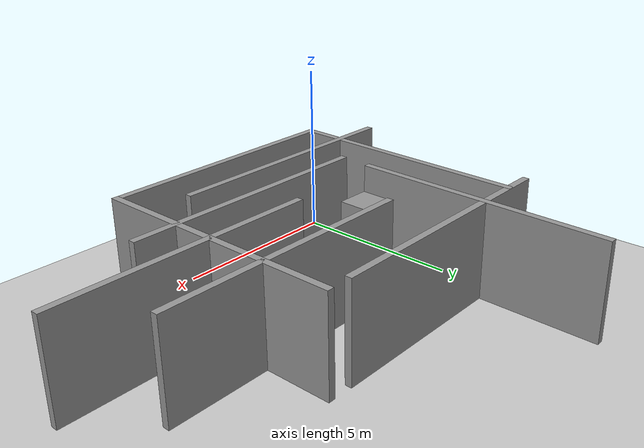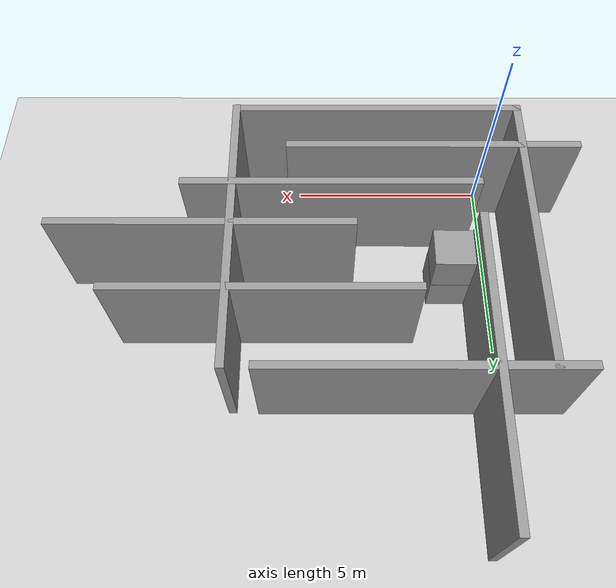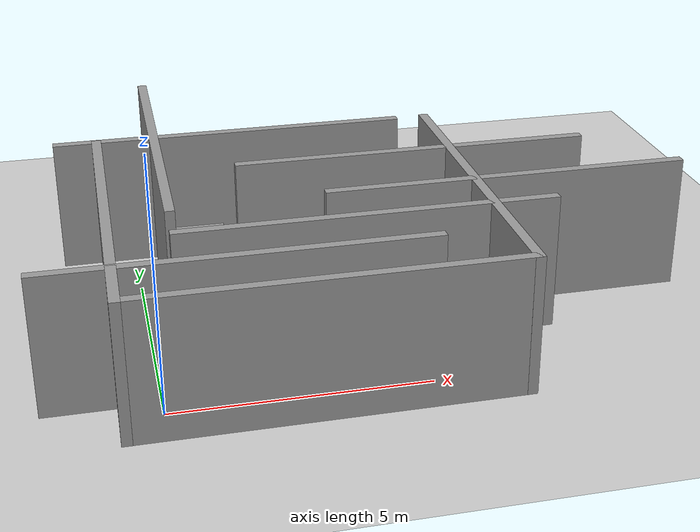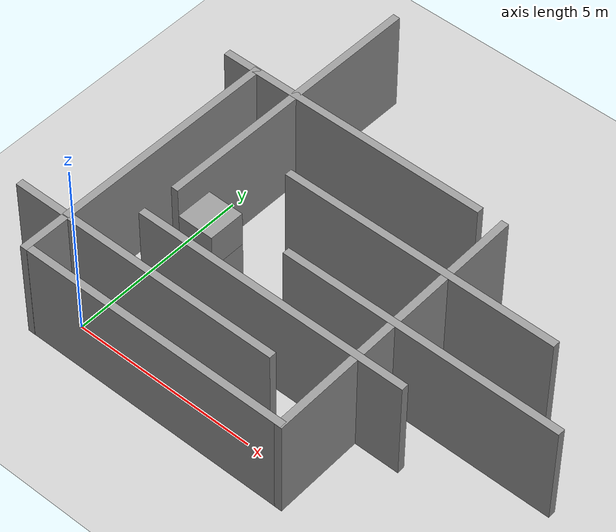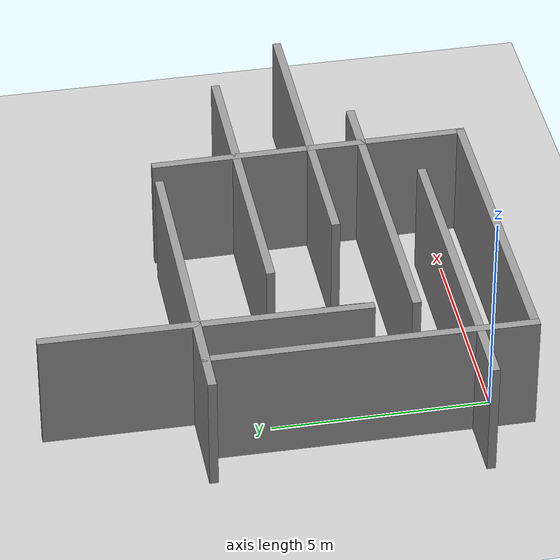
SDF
<sdf version="1.6">
 <world name="default">
  <light name="sun" type="directional">
   <pose>0 0 10 0 -0 0</pose>
   <diffuse>0.8 0.8 0.8 1</diffuse>
   <specular>0.2 0.2 0.2 1</specular>
   <attenuation>
    <range>1000</range>
    <constant>0.9</constant>
    <linear>0.01</linear>
    <quadratic>0.001</quadratic>
   </attenuation>
   <direction>-0.5 0.1 -0.9</direction>
  </light>
  <model name="ground_plane">
   <static>1</static>
   <link name="link">
    <collision name="collision">
     <geometry><plane><normal>0 0 1</normal><size>100 100</size></plane></geometry>
     <surface>
      <contact><collide_bitmask>65535</collide_bitmask></contact>
      <friction><ode><mu>100</mu><mu2>50</mu2></ode></friction>
     </surface>
    </collision>
    <visual name="visual">
     <cast_shadows>0</cast_shadows>
     <geometry><plane><normal>0 0 1</normal><size>100 100</size></plane></geometry>
     <material>
      <script><uri>file://media/materials/scripts/gazebo.material</uri><name>Gazebo/Grey</name></script>
     </material>
    </visual>
   </link>
  </model>
  <gravity>0 0 -9.8</gravity>
  <magnetic_field>6e-06 2.3e-05 -4.2e-05</magnetic_field>
  <atmosphere type="adiabatic"/>
  <physics name="default_physics" default="0" type="ode">
   <max_step_size>0.001</max_step_size>
   <real_time_factor>1</real_time_factor>
   <real_time_update_rate>1000</real_time_update_rate>
  </physics>
  <scene><ambient>0.4 0.4 0.4 1</ambient><background>0.7 0.7 0.7 1</background><shadows>1</shadows></scene>
  <audio><device>default</device></audio>
  <spherical_coordinates>
   <surface_model>EARTH_WGS84</surface_model>
   <latitude_deg>0</latitude_deg>
   <longitude_deg>0</longitude_deg>
   <elevation>0</elevation>
   <heading_deg>0</heading_deg>
  </spherical_coordinates>
  <model name="grey_wall">
   <static>1</static>
   <link name="link">
    <pose>0 0 1.4 0 -0 0</pose>
    <collision name="collision"><geometry><box><size>7.5 0.2 2.8</size></box></geometry></collision>
    <visual name="visual">
     <cast_shadows>0</cast_shadows>
     <geometry><box><size>7.5 0.2 2.8</size></box></geometry>
     <material>
      <script>
       <uri>model://grey_wall/materials/scripts</uri>
       <uri>model://grey_wall/materials/textures</uri>
       <name>vrc/grey_wall</name>
      </script>
     </material>
    </visual>
   </link>
   <pose>2.9398 -0.755993 0 0 -0 0</pose>
  </model>
  <model name="grey_wall_0">
   <static>1</static>
   <link name="link">
    <pose>0 0 1.4 0 -0 0</pose>
    <collision name="collision"><geometry><box><size>7.5 0.2 2.8</size></box></geometry></collision>
    <visual name="visual">
     <cast_shadows>0</cast_shadows>
     <geometry><box><size>7.5 0.2 2.8</size></box></geometry>
     <material>
      <script>
       <uri>model://grey_wall/materials/scripts</uri>
       <uri>model://grey_wall/materials/textures</uri>
       <name>vrc/grey_wall</name>
      </script>
     </material>
    </visual>
   </link>
   <pose>1.55326 0.480249 0 0 -0 0</pose>
  </model>
  <model name="grey_wall_1">
   <static>1</static>
   <link name="link">
    <pose>0 0 1.4 0 -0 0</pose>
    <collision name="collision"><geometry><box><size>7.5 0.2 2.8</size></box></geometry></collision>
    <visual name="visual">
     <cast_shadows>0</cast_shadows>
     <geometry><box><size>7.5 0.2 2.8</size></box></geometry>
     <material>
      <script>
       <uri>model://grey_wall/materials/scripts</uri>
       <uri>model://grey_wall/materials/textures</uri>
       <name>vrc/grey_wall</name>
      </script>
     </material>
    </visual>
   </link>
   <pose>6.59995 2.89282 0 0 -0 1.57896</pose>
  </model>
  <model name="grey_wall_2">
   <static>1</static>
   <link name="link">
    <pose>0 0 1.4 0 -0 0</pose>
    <collision name="collision"><geometry><box><size>7.5 0.2 2.8</size></box></geometry></collision>
    <visual name="visual">
     <cast_shadows>0</cast_shadows>
     <geometry><box><size>7.5 0.2 2.8</size></box></geometry>
     <material>
      <script>
       <uri>model://grey_wall/materials/scripts</uri>
       <uri>model://grey_wall/materials/textures</uri>
       <name>vrc/grey_wall</name>
      </script>
     </material>
    </visual>
   </link>
   <pose>-0.688116 2.8906 0 0 0 -1.58039</pose>
  </model>
  <model name="grey_wall_3">
   <static>1</static>
   <link name="link">
    <pose>0 0 1.4 0 -0 0</pose>
    <collision name="collision"><geometry><box><size>7.5 0.2 2.8</size></box></geometry></collision>
    <visual name="visual">
     <cast_shadows>0</cast_shadows>
     <geometry><box><size>7.5 0.2 2.8</size></box></geometry>
     <material>
      <script>
       <uri>model://grey_wall/materials/scripts</uri>
       <uri>model://grey_wall/materials/textures</uri>
       <name>vrc/grey_wall</name>
      </script>
     </material>
    </visual>
   </link>
   <pose>2.19198 6.56714 0 0 -0 0</pose>
  </model>
  <model name="grey_wall_4">
   <static>1</static>
   <link name="link">
    <pose>0 0 1.4 0 -0 0</pose>
    <collision name="collision"><geometry><box><size>7.5 0.2 2.8</size></box></geometry></collision>
    <visual name="visual">
     <cast_shadows>0</cast_shadows>
     <geometry><box><size>7.5 0.2 2.8</size></box></geometry>
     <material>
      <script>
       <uri>model://grey_wall/materials/scripts</uri>
       <uri>model://grey_wall/materials/textures</uri>
       <name>vrc/grey_wall</name>
      </script>
     </material>
    </visual>
   </link>
   <pose>4.16288 1.65008 0 0 -0 0</pose>
  </model>
  <model name="grey_wall_5">
   <static>1</static>
   <link name="link">
    <pose>0 0 1.4 0 -0 0</pose>
    <collision name="collision"><geometry><box><size>7.5 0.2 2.8</size></box></geometry></collision>
    <visual name="visual">
     <cast_shadows>0</cast_shadows>
     <geometry><box><size>7.5 0.2 2.8</size></box></geometry>
     <material>
      <script>
       <uri>model://grey_wall/materials/scripts</uri>
       <uri>model://grey_wall/materials/textures</uri>
       <name>vrc/grey_wall</name>
      </script>
     </material>
    </visual>
   </link>
   <pose>0.549973 6.33812 0 0 0 -1.58154</pose>
  </model>
  <model name="grey_wall_6">
   <static>1</static>
   <link name="link">
    <pose>0 0 1.4 0 -0 0</pose>
    <collision name="collision"><geometry><box><size>7.5 0.2 2.8</size></box></geometry></collision>
    <visual name="visual">
     <cast_shadows>0</cast_shadows>
     <geometry><box><size>7.5 0.2 2.8</size></box></geometry>
     <material>
      <script>
       <uri>model://grey_wall/materials/scripts</uri>
       <uri>model://grey_wall/materials/textures</uri>
       <name>vrc/grey_wall</name>
      </script>
     </material>
    </visual>
   </link>
   <pose>7.2983 2.85956 0 0 -0 0</pose>
  </model>
  <model name="grey_wall_7">
   <static>1</static>
   <link name="link">
    <pose>0 0 1.4 0 -0 0</pose>
    <collision name="collision"><geometry><box><size>7.5 0.2 2.8</size></box></geometry></collision>
    <visual name="visual">
     <cast_shadows>0</cast_shadows>
     <geometry><box><size>7.5 0.2 2.8</size></box></geometry>
     <material>
      <script>
       <uri>model://grey_wall/materials/scripts</uri>
       <uri>model://grey_wall/materials/textures</uri>
       <name>vrc/grey_wall</name>
      </script>
     </material>
    </visual>
   </link>
   <pose>5.78547 4.64207 0 0 -0 0</pose>
  </model>
  <model name="unit_box">
   <pose>1.11626 3.08069 1.49999 1.6e-05 -0 -0.011338</pose>
   <link name="link">
    <inertial>
     <mass>1</mass>
     <inertia>
      <ixx>0.166667</ixx>
      <ixy>0</ixy>
      <ixz>0</ixz>
      <iyy>0.166667</iyy>
      <iyz>0</iyz>
      <izz>0.166667</izz>
     </inertia>
    </inertial>
    <collision name="collision"><geometry><box><size>1 1 1</size></box></geometry></collision>
    <visual name="visual">
     <geometry><box><size>1 1 1</size></box></geometry>
     <material>
      <script><name>Gazebo/Grey</name><uri>file://media/materials/scripts/gazebo.material</uri></script>
     </material>
    </visual>
   </link>
  </model>
  <model name="unit_box_0">
   <pose>1.11982 3.07785 0.5 0 0 -0.00143</pose>
   <link name="link">
    <inertial>
     <mass>1</mass>
     <inertia>
      <ixx>0.166667</ixx>
      <ixy>0</ixy>
      <ixz>0</ixz>
      <iyy>0.166667</iyy>
      <iyz>0</iyz>
      <izz>0.166667</izz>
     </inertia>
    </inertial>
    <collision name="collision"><geometry><box><size>1 1 1</size></box></geometry></collision>
    <visual name="visual">
     <geometry><box><size>1 1 1</size></box></geometry>
     <material>
      <script><name>Gazebo/Grey</name><uri>file://media/materials/scripts/gazebo.material</uri></script>
     </material>
    </visual>
   </link>
  </model>
 </world>
</sdf>
